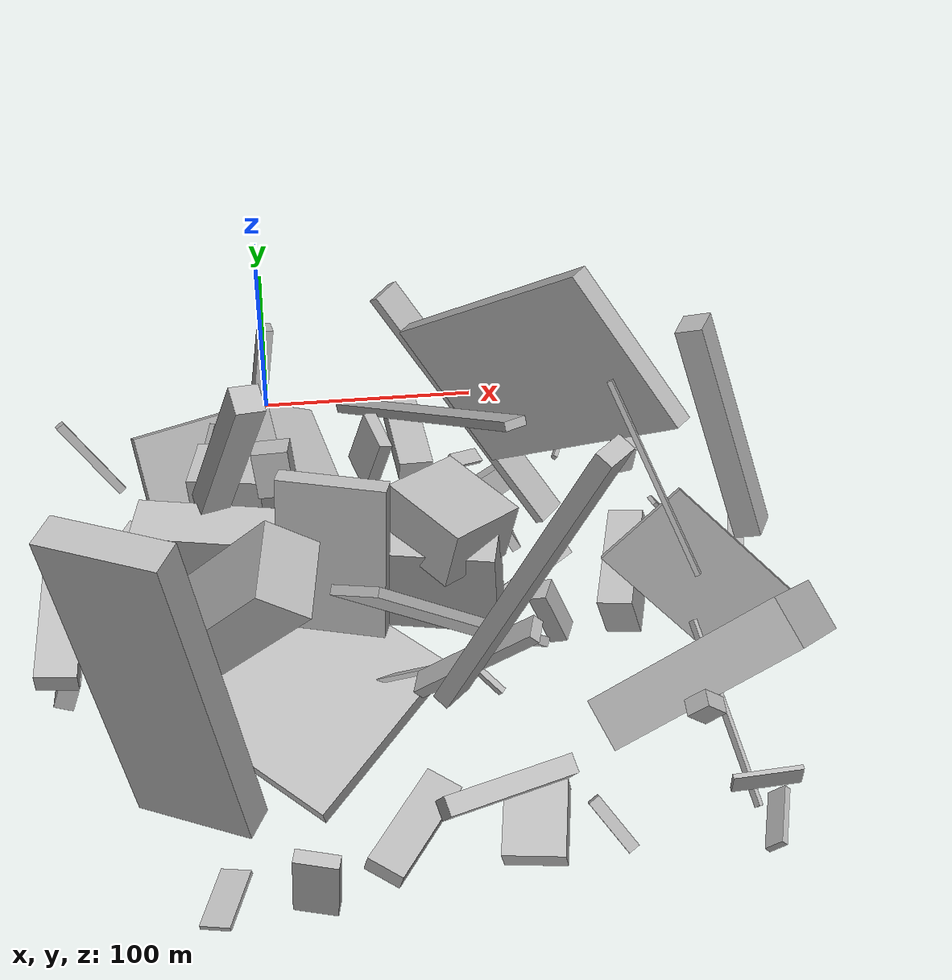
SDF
<sdf version="1.6">
 <world name="default">
  <model name="building_2">
   <static>0</static>
   <pose>20.115930124817158 -164.19813199769504 38.87186801956815 0.05302751474850434 0.05117361558581353 -1.7988946004145192</pose>
   <link name="link">
    <gravity>0</gravity>
    <pose>0 0 22.5 0 0 0</pose>
    <collision name="collision"><geometry><box><size>21 150 45</size></box></geometry></collision>
    <visual name="visual">
     <cast_shadows>0</cast_shadows>
     <geometry><box><size>21 150 45</size></box></geometry>
     <material>
      <script>
       <uri>model://HANNAS_wall/materials/scripts</uri>
       <uri>model://HANNAS_wall/materials/textures</uri>
       <name>vrc/HANNAS_wall</name>
      </script>
     </material>
    </visual>
   </link>
  </model>
  <model name="building_10">
   <static>0</static>
   <pose>-14.653882508272398 -234.8858611273966 21.38120555154649 -0.1643764812842645 -1.313797045708349 -2.1714278078921576</pose>
   <link name="link">
    <gravity>0</gravity>
    <pose>0 0 40.5 0 0 0</pose>
    <collision name="collision"><geometry><box><size>8 79 81</size></box></geometry></collision>
    <visual name="visual">
     <cast_shadows>0</cast_shadows>
     <geometry><box><size>8 79 81</size></box></geometry>
     <material>
      <script>
       <uri>model://HANNAS_wall/materials/scripts</uri>
       <uri>model://HANNAS_wall/materials/textures</uri>
       <name>vrc/HANNAS_wall</name>
      </script>
     </material>
    </visual>
   </link>
  </model>
  <model name="building_17">
   <static>0</static>
   <pose>55.57145236262984 -222.6436472532139 50.40587718873466 -0.7411034410752321 0.10081316057884478 -1.845032765059312</pose>
   <link name="link">
    <gravity>0</gravity>
    <pose>0 0 33.5 0 0 0</pose>
    <collision name="collision"><geometry><box><size>10 5 67</size></box></geometry></collision>
    <visual name="visual">
     <cast_shadows>0</cast_shadows>
     <geometry><box><size>10 5 67</size></box></geometry>
     <material>
      <script>
       <uri>model://HANNAS_wall/materials/scripts</uri>
       <uri>model://HANNAS_wall/materials/textures</uri>
       <name>vrc/HANNAS_wall</name>
      </script>
     </material>
    </visual>
   </link>
  </model>
  <model name="building_25">
   <static>0</static>
   <pose>82.06618334382708 -109.70899137280261 12.911439734087468 -1.81425020537896 0.7407651662791405 1.3296588367044313</pose>
   <link name="link">
    <gravity>0</gravity>
    <pose>0 0 11.0 0 0 0</pose>
    <collision name="collision"><geometry><box><size>8 4 22</size></box></geometry></collision>
    <visual name="visual">
     <cast_shadows>0</cast_shadows>
     <geometry><box><size>8 4 22</size></box></geometry>
     <material>
      <script>
       <uri>model://HANNAS_wall/materials/scripts</uri>
       <uri>model://HANNAS_wall/materials/textures</uri>
       <name>vrc/HANNAS_wall</name>
      </script>
     </material>
    </visual>
   </link>
  </model>
  <model name="building_29">
   <static>0</static>
   <pose>64.6198443517878 -97.30763751534842 78.0623768036405 1.761979795424307 -0.9644688415030647 1.870822670234923</pose>
   <link name="link">
    <gravity>0</gravity>
    <pose>0 0 5.0 0 0 0</pose>
    <collision name="collision"><geometry><box><size>4 150 10</size></box></geometry></collision>
    <visual name="visual">
     <cast_shadows>0</cast_shadows>
     <geometry><box><size>4 150 10</size></box></geometry>
     <material>
      <script>
       <uri>model://HANNAS_wall/materials/scripts</uri>
       <uri>model://HANNAS_wall/materials/textures</uri>
       <name>vrc/HANNAS_wall</name>
      </script>
     </material>
    </visual>
   </link>
  </model>
  <model name="building_33">
   <static>0</static>
   <pose>112.37411288349234 -170.54389705355626 28.919201019426623 -1.1468998049021748 -0.021981084122898717 -1.9338927442164555</pose>
   <link name="link">
    <gravity>0</gravity>
    <pose>0 0 4.0 0 0 0</pose>
    <collision name="collision"><geometry><box><size>11 26 8</size></box></geometry></collision>
    <visual name="visual">
     <cast_shadows>0</cast_shadows>
     <geometry><box><size>11 26 8</size></box></geometry>
     <material>
      <script>
       <uri>model://HANNAS_wall/materials/scripts</uri>
       <uri>model://HANNAS_wall/materials/textures</uri>
       <name>vrc/HANNAS_wall</name>
      </script>
     </material>
    </visual>
   </link>
  </model>
  <model name="building_41">
   <static>0</static>
   <pose>-3.1355635308226386 -62.61574151499572 48.77479102769235 -2.6857091984338752 -1.1535623427216741 1.1895858620108335</pose>
   <link name="link">
    <gravity>0</gravity>
    <pose>0 0 5.5 0 0 0</pose>
    <collision name="collision"><geometry><box><size>86 6 11</size></box></geometry></collision>
    <visual name="visual">
     <cast_shadows>0</cast_shadows>
     <geometry><box><size>86 6 11</size></box></geometry>
     <material>
      <script>
       <uri>model://HANNAS_wall/materials/scripts</uri>
       <uri>model://HANNAS_wall/materials/textures</uri>
       <name>vrc/HANNAS_wall</name>
      </script>
     </material>
    </visual>
   </link>
  </model>
  <model name="building_45">
   <static>0</static>
   <pose>-21.53232263623066 -100.40113677014267 31.678432481188562 0.07042741839347301 0.6018804615805614 1.9922401877541265</pose>
   <link name="link">
    <gravity>0</gravity>
    <pose>0 0 21.0 0 0 0</pose>
    <collision name="collision"><geometry><box><size>5 63 42</size></box></geometry></collision>
    <visual name="visual">
     <cast_shadows>0</cast_shadows>
     <geometry><box><size>5 63 42</size></box></geometry>
     <material>
      <script>
       <uri>model://HANNAS_wall/materials/scripts</uri>
       <uri>model://HANNAS_wall/materials/textures</uri>
       <name>vrc/HANNAS_wall</name>
      </script>
     </material>
    </visual>
   </link>
  </model>
  <model name="building_48">
   <static>0</static>
   <pose>59.304486040489145 -154.61539108928577 89.2467785555956 1.615810645872121 0.22770645034867296 0.690434921098013</pose>
   <link name="link">
    <gravity>0</gravity>
    <pose>0 0 19.5 0 0 0</pose>
    <collision name="collision"><geometry><box><size>36 25 39</size></box></geometry></collision>
    <visual name="visual">
     <cast_shadows>0</cast_shadows>
     <geometry><box><size>36 25 39</size></box></geometry>
     <material>
      <script>
       <uri>model://HANNAS_wall/materials/scripts</uri>
       <uri>model://HANNAS_wall/materials/textures</uri>
       <name>vrc/HANNAS_wall</name>
      </script>
     </material>
    </visual>
   </link>
  </model>
  <model name="building_55">
   <static>0</static>
   <pose>64.57677896662419 -251.51733581655637 80.02654260361066 -0.33266746104643874 -0.14439589258159058 -2.3137843040608077</pose>
   <link name="link">
    <gravity>0</gravity>
    <pose>0 0 75.0 0 0 0</pose>
    <collision name="collision"><geometry><box><size>14 7 150</size></box></geometry></collision>
    <visual name="visual">
     <cast_shadows>0</cast_shadows>
     <geometry><box><size>14 7 150</size></box></geometry>
     <material>
      <script>
       <uri>model://HANNAS_wall/materials/scripts</uri>
       <uri>model://HANNAS_wall/materials/textures</uri>
       <name>vrc/HANNAS_wall</name>
      </script>
     </material>
    </visual>
   </link>
  </model>
  <model name="building_57">
   <static>0</static>
   <pose>-46.806011891671744 -265.58262848588737 106.00445804383712 1.2664248955150095 -1.4229365916346872 2.9499912989440564</pose>
   <link name="link">
    <gravity>0</gravity>
    <pose>0 0 7.0 0 0 0</pose>
    <collision name="collision"><geometry><box><size>150 50 14</size></box></geometry></collision>
    <visual name="visual">
     <cast_shadows>0</cast_shadows>
     <geometry><box><size>150 50 14</size></box></geometry>
     <material>
      <script>
       <uri>model://HANNAS_wall/materials/scripts</uri>
       <uri>model://HANNAS_wall/materials/textures</uri>
       <name>vrc/HANNAS_wall</name>
      </script>
     </material>
    </visual>
   </link>
  </model>
  <model name="building_58">
   <static>0</static>
   <pose>178.44542617045857 -149.1197040440265 23.113885636562685 -2.0559317305436897 -1.0906878141289722 1.2617319933975037</pose>
   <link name="link">
    <gravity>0</gravity>
    <pose>0 0 8.5 0 0 0</pose>
    <collision name="collision"><geometry><box><size>24 23 17</size></box></geometry></collision>
    <visual name="visual">
     <cast_shadows>0</cast_shadows>
     <geometry><box><size>24 23 17</size></box></geometry>
     <material>
      <script>
       <uri>model://HANNAS_wall/materials/scripts</uri>
       <uri>model://HANNAS_wall/materials/textures</uri>
       <name>vrc/HANNAS_wall</name>
      </script>
     </material>
    </visual>
   </link>
  </model>
  <model name="building_60">
   <static>0</static>
   <pose>153.32607551349147 -152.57368756796382 21.730935655693163 0.23762802795029403 -0.20741377636876135 -0.30191598861191105</pose>
   <link name="link">
    <gravity>0</gravity>
    <pose>0 0 12.5 0 0 0</pose>
    <collision name="collision"><geometry><box><size>15 46 25</size></box></geometry></collision>
    <visual name="visual">
     <cast_shadows>0</cast_shadows>
     <geometry><box><size>15 46 25</size></box></geometry>
     <material>
      <script>
       <uri>model://HANNAS_wall/materials/scripts</uri>
       <uri>model://HANNAS_wall/materials/textures</uri>
       <name>vrc/HANNAS_wall</name>
      </script>
     </material>
    </visual>
   </link>
  </model>
  <model name="building_61">
   <static>0</static>
   <pose>98.79811189447233 -86.95916325221143 12.849584905360675 -0.5576245099301077 0.2625470262161076 0.8285946858133452</pose>
   <link name="link">
    <gravity>0</gravity>
    <pose>0 0 6.0 0 0 0</pose>
    <collision name="collision"><geometry><box><size>31 8 12</size></box></geometry></collision>
    <visual name="visual">
     <cast_shadows>0</cast_shadows>
     <geometry><box><size>31 8 12</size></box></geometry>
     <material>
      <script>
       <uri>model://HANNAS_wall/materials/scripts</uri>
       <uri>model://HANNAS_wall/materials/textures</uri>
       <name>vrc/HANNAS_wall</name>
      </script>
     </material>
    </visual>
   </link>
  </model>
  <model name="building_62">
   <static>0</static>
   <pose>192.5981578631846 -122.53788837827994 78.79977411280898 1.9720759930179923 -1.1359447752721663 2.319978445361871</pose>
   <link name="link">
    <gravity>0</gravity>
    <pose>0 0 7.5 0 0 0</pose>
    <collision name="collision"><geometry><box><size>103 12 15</size></box></geometry></collision>
    <visual name="visual">
     <cast_shadows>0</cast_shadows>
     <geometry><box><size>103 12 15</size></box></geometry>
     <material>
      <script>
       <uri>model://HANNAS_wall/materials/scripts</uri>
       <uri>model://HANNAS_wall/materials/textures</uri>
       <name>vrc/HANNAS_wall</name>
      </script>
     </material>
    </visual>
   </link>
  </model>
  <model name="building_65">
   <static>0</static>
   <pose>23.14238262968079 -191.9132581876779 93.29061042088983 1.7933318608636255 0.021293080809753465 2.8750200434883135</pose>
   <link name="link">
    <gravity>0</gravity>
    <pose>0 0 4.0 0 0 0</pose>
    <collision name="collision"><geometry><box><size>44 69 8</size></box></geometry></collision>
    <visual name="visual">
     <cast_shadows>0</cast_shadows>
     <geometry><box><size>44 69 8</size></box></geometry>
     <material>
      <script>
       <uri>model://HANNAS_wall/materials/scripts</uri>
       <uri>model://HANNAS_wall/materials/textures</uri>
       <name>vrc/HANNAS_wall</name>
      </script>
     </material>
    </visual>
   </link>
  </model>
  <model name="building_69">
   <static>0</static>
   <pose>-78.29454830998168 -64.67390494172753 36.4126117204011 -2.366166138102559 -0.9213501448685952 2.7867799126848265</pose>
   <link name="link">
    <gravity>0</gravity>
    <pose>0 0 2.0 0 0 0</pose>
    <collision name="collision"><geometry><box><size>43 4 4</size></box></geometry></collision>
    <visual name="visual">
     <cast_shadows>0</cast_shadows>
     <geometry><box><size>43 4 4</size></box></geometry>
     <material>
      <script>
       <uri>model://HANNAS_wall/materials/scripts</uri>
       <uri>model://HANNAS_wall/materials/textures</uri>
       <name>vrc/HANNAS_wall</name>
      </script>
     </material>
    </visual>
   </link>
  </model>
  <model name="building_72">
   <static>0</static>
   <pose>165.22284345289594 -225.7608390407624 69.40571266620425 2.275553194958932 -0.6766431850079959 0.004392168757803428</pose>
   <link name="link">
    <gravity>0</gravity>
    <pose>0 0 11.0 0 0 0</pose>
    <collision name="collision"><geometry><box><size>86 54 22</size></box></geometry></collision>
    <visual name="visual">
     <cast_shadows>0</cast_shadows>
     <geometry><box><size>86 54 22</size></box></geometry>
     <material>
      <script>
       <uri>model://HANNAS_wall/materials/scripts</uri>
       <uri>model://HANNAS_wall/materials/textures</uri>
       <name>vrc/HANNAS_wall</name>
      </script>
     </material>
    </visual>
   </link>
  </model>
  <model name="building_83">
   <static>0</static>
   <pose>-20.177244760757407 -155.64967885698138 118.74687004132306 -2.024254490968071 -1.201841854659815 -0.869928716143715</pose>
   <link name="link">
    <gravity>0</gravity>
    <pose>0 0 6.0 0 0 0</pose>
    <collision name="collision"><geometry><box><size>85 12 12</size></box></geometry></collision>
    <visual name="visual">
     <cast_shadows>0</cast_shadows>
     <geometry><box><size>85 12 12</size></box></geometry>
     <material>
      <script>
       <uri>model://HANNAS_wall/materials/scripts</uri>
       <uri>model://HANNAS_wall/materials/textures</uri>
       <name>vrc/HANNAS_wall</name>
      </script>
     </material>
    </visual>
   </link>
  </model>
  <model name="building_86">
   <static>0</static>
   <pose>89.65680408116185 -65.9262042433949 53.80362345214422 0.8087181341406603 -0.13660286046806155 0.7695952012316586</pose>
   <link name="link">
    <gravity>0</gravity>
    <pose>0 0 3.0 0 0 0</pose>
    <collision name="collision"><geometry><box><size>13 128 6</size></box></geometry></collision>
    <visual name="visual">
     <cast_shadows>0</cast_shadows>
     <geometry><box><size>13 128 6</size></box></geometry>
     <material>
      <script>
       <uri>model://HANNAS_wall/materials/scripts</uri>
       <uri>model://HANNAS_wall/materials/textures</uri>
       <name>vrc/HANNAS_wall</name>
      </script>
     </material>
    </visual>
   </link>
  </model>
  <model name="building_87">
   <static>0</static>
   <pose>-62.68106762970011 -100.67473033619099 17.92817573729197 1.4371061543623482 -1.2621133316720623 -0.3425859860334725</pose>
   <link name="link">
    <gravity>0</gravity>
    <pose>0 0 21.5 0 0 0</pose>
    <collision name="collision"><geometry><box><size>21 7 43</size></box></geometry></collision>
    <visual name="visual">
     <cast_shadows>0</cast_shadows>
     <geometry><box><size>21 7 43</size></box></geometry>
     <material>
      <script>
       <uri>model://HANNAS_wall/materials/scripts</uri>
       <uri>model://HANNAS_wall/materials/textures</uri>
       <name>vrc/HANNAS_wall</name>
      </script>
     </material>
    </visual>
   </link>
  </model>
  <model name="building_90">
   <static>0</static>
   <pose>130.79523859044875 -137.8534179496747 96.97353263816859 0.7668216752493722 0.16503710604066718 -2.433634890597239</pose>
   <link name="link">
    <gravity>0</gravity>
    <pose>0 0 35.5 0 0 0</pose>
    <collision name="collision"><geometry><box><size>7 150 71</size></box></geometry></collision>
    <visual name="visual">
     <cast_shadows>0</cast_shadows>
     <geometry><box><size>7 150 71</size></box></geometry>
     <material>
      <script>
       <uri>model://HANNAS_wall/materials/scripts</uri>
       <uri>model://HANNAS_wall/materials/textures</uri>
       <name>vrc/HANNAS_wall</name>
      </script>
     </material>
    </visual>
   </link>
  </model>
  <model name="building_94">
   <static>0</static>
   <pose>41.11424382492352 -116.74228011941064 16.150655836621407 1.2439511117817144 -1.1207428656020961 0.7728546599898881</pose>
   <link name="link">
    <gravity>0</gravity>
    <pose>0 0 4.0 0 0 0</pose>
    <collision name="collision"><geometry><box><size>10 15 8</size></box></geometry></collision>
    <visual name="visual">
     <cast_shadows>0</cast_shadows>
     <geometry><box><size>10 15 8</size></box></geometry>
     <material>
      <script>
       <uri>model://HANNAS_wall/materials/scripts</uri>
       <uri>model://HANNAS_wall/materials/textures</uri>
       <name>vrc/HANNAS_wall</name>
      </script>
     </material>
    </visual>
   </link>
  </model>
  <model name="building_95">
   <static>0</static>
   <pose>100.23281832144102 -201.26283711128804 47.548110122701324 0.6940412846850201 -0.49646343166279033 -0.668192720636193</pose>
   <link name="link">
    <gravity>0</gravity>
    <pose>0 0 51.0 0 0 0</pose>
    <collision name="collision"><geometry><box><size>25 4 102</size></box></geometry></collision>
    <visual name="visual">
     <cast_shadows>0</cast_shadows>
     <geometry><box><size>25 4 102</size></box></geometry>
     <material>
      <script>
       <uri>model://HANNAS_wall/materials/scripts</uri>
       <uri>model://HANNAS_wall/materials/textures</uri>
       <name>vrc/HANNAS_wall</name>
      </script>
     </material>
    </visual>
   </link>
  </model>
  <model name="building_100">
   <static>0</static>
   <pose>100.71717931586086 -120.36412615372488 33.591980723084816 1.0088941492089871 -0.44641903206759553 0.2894194484331794</pose>
   <link name="link">
    <gravity>0</gravity>
    <pose>0 0 12.0 0 0 0</pose>
    <collision name="collision"><geometry><box><size>4 13 24</size></box></geometry></collision>
    <visual name="visual">
     <cast_shadows>0</cast_shadows>
     <geometry><box><size>4 13 24</size></box></geometry>
     <material>
      <script>
       <uri>model://HANNAS_wall/materials/scripts</uri>
       <uri>model://HANNAS_wall/materials/textures</uri>
       <name>vrc/HANNAS_wall</name>
      </script>
     </material>
    </visual>
   </link>
  </model>
  <model name="building_109">
   <static>0</static>
   <pose>157.93919721803712 -112.33136707663239 64.33720233184894 1.8060112545824079 0.6464731753858238 -1.408871413568316</pose>
   <link name="link">
    <gravity>0</gravity>
    <pose>0 0 4.5 0 0 0</pose>
    <collision name="collision"><geometry><box><size>9 77 9</size></box></geometry></collision>
    <visual name="visual">
     <cast_shadows>0</cast_shadows>
     <geometry><box><size>9 77 9</size></box></geometry>
     <material>
      <script>
       <uri>model://HANNAS_wall/materials/scripts</uri>
       <uri>model://HANNAS_wall/materials/textures</uri>
       <name>vrc/HANNAS_wall</name>
      </script>
     </material>
    </visual>
   </link>
  </model>
  <model name="building_115">
   <static>0</static>
   <pose>-81.13247199550916 -246.90754813016662 96.41196381839696 -0.22940714861636383 -1.4283756794142208 -1.3978720352013458</pose>
   <link name="link">
    <gravity>0</gravity>
    <pose>0 0 30.5 0 0 0</pose>
    <collision name="collision"><geometry><box><size>9 16 61</size></box></geometry></collision>
    <visual name="visual">
     <cast_shadows>0</cast_shadows>
     <geometry><box><size>9 16 61</size></box></geometry>
     <material>
      <script>
       <uri>model://HANNAS_wall/materials/scripts</uri>
       <uri>model://HANNAS_wall/materials/textures</uri>
       <name>vrc/HANNAS_wall</name>
      </script>
     </material>
    </visual>
   </link>
  </model>
  <model name="building_118">
   <static>0</static>
   <pose>197.5589991409333 -259.1487330754447 11.061764370691503 1.5988281615284305 0.7320529500939165 -0.23730004032871474</pose>
   <link name="link">
    <gravity>0</gravity>
    <pose>0 0 13.5 0 0 0</pose>
    <collision name="collision"><geometry><box><size>3 9 27</size></box></geometry></collision>
    <visual name="visual">
     <cast_shadows>0</cast_shadows>
     <geometry><box><size>3 9 27</size></box></geometry>
     <material>
      <script>
       <uri>model://HANNAS_wall/materials/scripts</uri>
       <uri>model://HANNAS_wall/materials/textures</uri>
       <name>vrc/HANNAS_wall</name>
      </script>
     </material>
    </visual>
   </link>
  </model>
  <model name="building_126">
   <static>0</static>
   <pose>1.288243516894891 -128.72979635833707 42.53296514786243 -2.318363097789258 -1.4582097796813684 2.104246017134072</pose>
   <link name="link">
    <gravity>0</gravity>
    <pose>0 0 15.5 0 0 0</pose>
    <collision name="collision"><geometry><box><size>80 25 31</size></box></geometry></collision>
    <visual name="visual">
     <cast_shadows>0</cast_shadows>
     <geometry><box><size>80 25 31</size></box></geometry>
     <material>
      <script>
       <uri>model://HANNAS_wall/materials/scripts</uri>
       <uri>model://HANNAS_wall/materials/textures</uri>
       <name>vrc/HANNAS_wall</name>
      </script>
     </material>
    </visual>
   </link>
  </model>
  <model name="building_127">
   <static>0</static>
   <pose>81.85211866598398 -278.4196344837753 53.272169282231985 -0.12898523043396276 0.5136966399409719 -1.2590906597268083</pose>
   <link name="link">
    <gravity>0</gravity>
    <pose>0 0 5.0 0 0 0</pose>
    <collision name="collision"><geometry><box><size>8 55 10</size></box></geometry></collision>
    <visual name="visual">
     <cast_shadows>0</cast_shadows>
     <geometry><box><size>8 55 10</size></box></geometry>
     <material>
      <script>
       <uri>model://HANNAS_wall/materials/scripts</uri>
       <uri>model://HANNAS_wall/materials/textures</uri>
       <name>vrc/HANNAS_wall</name>
      </script>
     </material>
    </visual>
   </link>
  </model>
  <model name="building_131">
   <static>0</static>
   <pose>181.2816889673761 -285.09569511227096 52.47758694585343 -0.04449893236541682 -0.10971800223028848 1.6151601832095275</pose>
   <link name="link">
    <gravity>0</gravity>
    <pose>0 0 5.0 0 0 0</pose>
    <collision name="collision"><geometry><box><size>2 27 10</size></box></geometry></collision>
    <visual name="visual">
     <cast_shadows>0</cast_shadows>
     <geometry><box><size>2 27 10</size></box></geometry>
     <material>
      <script>
       <uri>model://HANNAS_wall/materials/scripts</uri>
       <uri>model://HANNAS_wall/materials/textures</uri>
       <name>vrc/HANNAS_wall</name>
      </script>
     </material>
    </visual>
   </link>
  </model>
  <model name="building_133">
   <static>0</static>
   <pose>131.74264195122788 -84.93389717562323 57.2818017439639 -3.0489397964035745 0.918859482099873 2.8860302376464366</pose>
   <link name="link">
    <gravity>0</gravity>
    <pose>0 0 1.0 0 0 0</pose>
    <collision name="collision"><geometry><box><size>2 47 2</size></box></geometry></collision>
    <visual name="visual">
     <cast_shadows>0</cast_shadows>
     <geometry><box><size>2 47 2</size></box></geometry>
     <material>
      <script>
       <uri>model://HANNAS_wall/materials/scripts</uri>
       <uri>model://HANNAS_wall/materials/textures</uri>
       <name>vrc/HANNAS_wall</name>
      </script>
     </material>
    </visual>
   </link>
  </model>
  <model name="building_135">
   <static>0</static>
   <pose>-46.08735279704539 -125.27800669746117 6.828600832795215 1.5272385469569247 -0.11624599409238742 -0.2089633353019926</pose>
   <link name="link">
    <gravity>0</gravity>
    <pose>0 0 5.0 0 0 0</pose>
    <collision name="collision"><geometry><box><size>54 5 10</size></box></geometry></collision>
    <visual name="visual">
     <cast_shadows>0</cast_shadows>
     <geometry><box><size>54 5 10</size></box></geometry>
     <material>
      <script>
       <uri>model://HANNAS_wall/materials/scripts</uri>
       <uri>model://HANNAS_wall/materials/textures</uri>
       <name>vrc/HANNAS_wall</name>
      </script>
     </material>
    </visual>
   </link>
  </model>
  <model name="building_143">
   <static>0</static>
   <pose>171.15298145572044 -105.41935662045121 24.902596455448975 2.5157034705105206 0.13612151017257815 1.8560912126010578</pose>
   <link name="link">
    <gravity>0</gravity>
    <pose>0 0 24.0 0 0 0</pose>
    <collision name="collision"><geometry><box><size>6 2 48</size></box></geometry></collision>
    <visual name="visual">
     <cast_shadows>0</cast_shadows>
     <geometry><box><size>6 2 48</size></box></geometry>
     <material>
      <script>
       <uri>model://HANNAS_wall/materials/scripts</uri>
       <uri>model://HANNAS_wall/materials/textures</uri>
       <name>vrc/HANNAS_wall</name>
      </script>
     </material>
    </visual>
   </link>
  </model>
  <model name="building_146">
   <static>0</static>
   <pose>10.118927373350424 -289.48264143981294 21.633653438912596 2.5749233886666536 -1.4778393158905914 -1.236014513335131</pose>
   <link name="link">
    <gravity>0</gravity>
    <pose>0 0 3.0 0 0 0</pose>
    <collision name="collision"><geometry><box><size>37 18 6</size></box></geometry></collision>
    <visual name="visual">
     <cast_shadows>0</cast_shadows>
     <geometry><box><size>37 18 6</size></box></geometry>
     <material>
      <script>
       <uri>model://HANNAS_wall/materials/scripts</uri>
       <uri>model://HANNAS_wall/materials/textures</uri>
       <name>vrc/HANNAS_wall</name>
      </script>
     </material>
    </visual>
   </link>
  </model>
  <model name="building_149">
   <static>0</static>
   <pose>-38.44994192928009 -202.13339361044746 10.041398876266722 1.3198582834373267 -0.1820110597094737 1.1772378602085238</pose>
   <link name="link">
    <gravity>0</gravity>
    <pose>0 0 2.5 0 0 0</pose>
    <collision name="collision"><geometry><box><size>40 8 5</size></box></geometry></collision>
    <visual name="visual">
     <cast_shadows>0</cast_shadows>
     <geometry><box><size>40 8 5</size></box></geometry>
     <material>
      <script>
       <uri>model://HANNAS_wall/materials/scripts</uri>
       <uri>model://HANNAS_wall/materials/textures</uri>
       <name>vrc/HANNAS_wall</name>
      </script>
     </material>
    </visual>
   </link>
  </model>
  <model name="building_167">
   <static>0</static>
   <pose>-26.693007969098687 -106.93553560462172 47.711401529852274 0.7826381630341074 0.31084573828817247 2.414981620330419</pose>
   <link name="link">
    <gravity>0</gravity>
    <pose>0 0 15.5 0 0 0</pose>
    <collision name="collision"><geometry><box><size>3 17 31</size></box></geometry></collision>
    <visual name="visual">
     <cast_shadows>0</cast_shadows>
     <geometry><box><size>3 17 31</size></box></geometry>
     <material>
      <script>
       <uri>model://HANNAS_wall/materials/scripts</uri>
       <uri>model://HANNAS_wall/materials/textures</uri>
       <name>vrc/HANNAS_wall</name>
      </script>
     </material>
    </visual>
   </link>
  </model>
  <model name="building_170">
   <static>0</static>
   <pose>63.41604790339656 -72.16765656056403 47.54498114682969 -3.047225041680436 -0.04965049291167285 -3.0689932728132523</pose>
   <link name="link">
    <gravity>0</gravity>
    <pose>0 0 4.5 0 0 0</pose>
    <collision name="collision"><geometry><box><size>15 50 9</size></box></geometry></collision>
    <visual name="visual">
     <cast_shadows>0</cast_shadows>
     <geometry><box><size>15 50 9</size></box></geometry>
     <material>
      <script>
       <uri>model://HANNAS_wall/materials/scripts</uri>
       <uri>model://HANNAS_wall/materials/textures</uri>
       <name>vrc/HANNAS_wall</name>
      </script>
     </material>
    </visual>
   </link>
  </model>
  <model name="building_177">
   <static>0</static>
   <pose>17.837916408472914 -68.48486658649634 28.75251291094543 -3.074055448355195 -0.4272921102972726 -2.964466714347185</pose>
   <link name="link">
    <gravity>0</gravity>
    <pose>0 0 3.5 0 0 0</pose>
    <collision name="collision"><geometry><box><size>26 80 7</size></box></geometry></collision>
    <visual name="visual">
     <cast_shadows>0</cast_shadows>
     <geometry><box><size>26 80 7</size></box></geometry>
     <material>
      <script>
       <uri>model://HANNAS_wall/materials/scripts</uri>
       <uri>model://HANNAS_wall/materials/textures</uri>
       <name>vrc/HANNAS_wall</name>
      </script>
     </material>
    </visual>
   </link>
  </model>
  <model name="building_185">
   <static>0</static>
   <pose>189.34165698250135 -107.52662859751283 14.886654172947795 1.8884110835641332 -0.02966781704065549 0.09425152721885141</pose>
   <link name="link">
    <gravity>0</gravity>
    <pose>0 0 3.5 0 0 0</pose>
    <collision name="collision"><geometry><box><size>2 2 7</size></box></geometry></collision>
    <visual name="visual">
     <cast_shadows>0</cast_shadows>
     <geometry><box><size>2 2 7</size></box></geometry>
     <material>
      <script>
       <uri>model://HANNAS_wall/materials/scripts</uri>
       <uri>model://HANNAS_wall/materials/textures</uri>
       <name>vrc/HANNAS_wall</name>
      </script>
     </material>
    </visual>
   </link>
  </model>
  <model name="building_189">
   <static>0</static>
   <pose>109.43112109848855 -135.15395658229218 16.360259038192254 2.187290562368628 0.11415303980926605 0.7360291530261445</pose>
   <link name="link">
    <gravity>0</gravity>
    <pose>0 0 3.0 0 0 0</pose>
    <collision name="collision"><geometry><box><size>55 3 6</size></box></geometry></collision>
    <visual name="visual">
     <cast_shadows>0</cast_shadows>
     <geometry><box><size>55 3 6</size></box></geometry>
     <material>
      <script>
       <uri>model://HANNAS_wall/materials/scripts</uri>
       <uri>model://HANNAS_wall/materials/textures</uri>
       <name>vrc/HANNAS_wall</name>
      </script>
     </material>
    </visual>
   </link>
  </model>
  <model name="building_192">
   <static>0</static>
   <pose>-32.26908393545893 -284.3211512582923 4.231362537209368 -1.3425998739982516 -0.052573298224912 -1.8976037770064726</pose>
   <link name="link">
    <gravity>0</gravity>
    <pose>0 0 6.5 0 0 0</pose>
    <collision name="collision"><geometry><box><size>28 2 13</size></box></geometry></collision>
    <visual name="visual">
     <cast_shadows>0</cast_shadows>
     <geometry><box><size>28 2 13</size></box></geometry>
     <material>
      <script>
       <uri>model://HANNAS_wall/materials/scripts</uri>
       <uri>model://HANNAS_wall/materials/textures</uri>
       <name>vrc/HANNAS_wall</name>
      </script>
     </material>
    </visual>
   </link>
  </model>
  <model name="building_193">
   <static>0</static>
   <pose>89.79057593504986 -78.04163783518122 32.72611122403012 2.763324902601454 0.3440074850355977 -1.108359148970348</pose>
   <link name="link">
    <gravity>0</gravity>
    <pose>0 0 1.0 0 0 0</pose>
    <collision name="collision"><geometry><box><size>7 16 2</size></box></geometry></collision>
    <visual name="visual">
     <cast_shadows>0</cast_shadows>
     <geometry><box><size>7 16 2</size></box></geometry>
     <material>
      <script>
       <uri>model://HANNAS_wall/materials/scripts</uri>
       <uri>model://HANNAS_wall/materials/textures</uri>
       <name>vrc/HANNAS_wall</name>
      </script>
     </material>
    </visual>
   </link>
  </model>
  <model name="building_194">
   <static>0</static>
   <pose>96.99873828247907 -274.02629991240565 20.670085124205755 -0.11926244383682406 -0.32608543866477935 1.4155242167093747</pose>
   <link name="link">
    <gravity>0</gravity>
    <pose>0 0 6.5 0 0 0</pose>
    <collision name="collision"><geometry><box><size>31 25 13</size></box></geometry></collision>
    <visual name="visual">
     <cast_shadows>0</cast_shadows>
     <geometry><box><size>31 25 13</size></box></geometry>
     <material>
      <script>
       <uri>model://HANNAS_wall/materials/scripts</uri>
       <uri>model://HANNAS_wall/materials/textures</uri>
       <name>vrc/HANNAS_wall</name>
      </script>
     </material>
    </visual>
   </link>
  </model>
  <model name="building_195">
   <static>0</static>
   <pose>24.84594424916488 -203.94575686029233 30.42939132575425 2.6122211370247617 -0.4751479943951109 -0.250017434460628</pose>
   <link name="link">
    <gravity>0</gravity>
    <pose>0 0 1.0 0 0 0</pose>
    <collision name="collision"><geometry><box><size>80 4 2</size></box></geometry></collision>
    <visual name="visual">
     <cast_shadows>0</cast_shadows>
     <geometry><box><size>80 4 2</size></box></geometry>
     <material>
      <script>
       <uri>model://HANNAS_wall/materials/scripts</uri>
       <uri>model://HANNAS_wall/materials/textures</uri>
       <name>vrc/HANNAS_wall</name>
      </script>
     </material>
    </visual>
   </link>
  </model>
  <model name="building_196">
   <static>0</static>
   <pose>201.9620700644956 -146.2679951837957 20.48527630919894 -1.5298339309413593 1.3645215425386021 -0.152774577202606</pose>
   <link name="link">
    <gravity>0</gravity>
    <pose>0 0 21.5 0 0 0</pose>
    <collision name="collision"><geometry><box><size>2 7 43</size></box></geometry></collision>
    <visual name="visual">
     <cast_shadows>0</cast_shadows>
     <geometry><box><size>2 7 43</size></box></geometry>
     <material>
      <script>
       <uri>model://HANNAS_wall/materials/scripts</uri>
       <uri>model://HANNAS_wall/materials/textures</uri>
       <name>vrc/HANNAS_wall</name>
      </script>
     </material>
    </visual>
   </link>
  </model>
  <model name="building_199">
   <static>0</static>
   <pose>143.4876415105013 -214.97857422525303 150.8336728390799 -2.46820206513018 -0.8394943857902789 2.169430982340518</pose>
   <link name="link">
    <gravity>0</gravity>
    <pose>0 0 1.0 0 0 0</pose>
    <collision name="collision"><geometry><box><size>80 2 2</size></box></geometry></collision>
    <visual name="visual">
     <cast_shadows>0</cast_shadows>
     <geometry><box><size>80 2 2</size></box></geometry>
     <material>
      <script>
       <uri>model://HANNAS_wall/materials/scripts</uri>
       <uri>model://HANNAS_wall/materials/textures</uri>
       <name>vrc/HANNAS_wall</name>
      </script>
     </material>
    </visual>
   </link>
  </model>
  <model name="building_202">
   <static>0</static>
   <pose>179.80328469335024 -232.1087970103095 30.789310613820575 2.6453095338855337 -0.38777253892692215 -2.69765375585531</pose>
   <link name="link">
    <gravity>0</gravity>
    <pose>0 0 1.5 0 0 0</pose>
    <collision name="collision"><geometry><box><size>2 80 3</size></box></geometry></collision>
    <visual name="visual">
     <cast_shadows>0</cast_shadows>
     <geometry><box><size>2 80 3</size></box></geometry>
     <material>
      <script>
       <uri>model://HANNAS_wall/materials/scripts</uri>
       <uri>model://HANNAS_wall/materials/textures</uri>
       <name>vrc/HANNAS_wall</name>
      </script>
     </material>
    </visual>
   </link>
  </model>
  <model name="building_204">
   <static>0</static>
   <pose>-37.58808435010637 -207.7014059623083 69.54200908965691 -0.634055797570012 0.24237359247329424 -1.7342192635145588</pose>
   <link name="link">
    <gravity>0</gravity>
    <pose>0 0 40.0 0 0 0</pose>
    <collision name="collision"><geometry><box><size>32 24 80</size></box></geometry></collision>
    <visual name="visual">
     <cast_shadows>0</cast_shadows>
     <geometry><box><size>32 24 80</size></box></geometry>
     <material>
      <script>
       <uri>model://HANNAS_wall/materials/scripts</uri>
       <uri>model://HANNAS_wall/materials/textures</uri>
       <name>vrc/HANNAS_wall</name>
      </script>
     </material>
    </visual>
   </link>
  </model>
  <model name="building_205">
   <static>0</static>
   <pose>179.23790518450176 -176.25298712413579 47.58339496470105 2.000117446628017 -0.7491275317651198 2.8070070505137092</pose>
   <link name="link">
    <gravity>0</gravity>
    <pose>0 0 1.0 0 0 0</pose>
    <collision name="collision"><geometry><box><size>80 44 2</size></box></geometry></collision>
    <visual name="visual">
     <cast_shadows>0</cast_shadows>
     <geometry><box><size>80 44 2</size></box></geometry>
     <material>
      <script>
       <uri>model://HANNAS_wall/materials/scripts</uri>
       <uri>model://HANNAS_wall/materials/textures</uri>
       <name>vrc/HANNAS_wall</name>
      </script>
     </material>
    </visual>
   </link>
  </model>
  <model name="building_207">
   <static>0</static>
   <pose>161.48833011231517 -269.7908295888377 80.88093176272038 -0.799907221311945 -0.18367989623929623 1.5958353233855118</pose>
   <link name="link">
    <gravity>0</gravity>
    <pose>0 0 5.5 0 0 0</pose>
    <collision name="collision"><geometry><box><size>7 10 11</size></box></geometry></collision>
    <visual name="visual">
     <cast_shadows>0</cast_shadows>
     <geometry><box><size>7 10 11</size></box></geometry>
     <material>
      <script>
       <uri>model://HANNAS_wall/materials/scripts</uri>
       <uri>model://HANNAS_wall/materials/textures</uri>
       <name>vrc/HANNAS_wall</name>
      </script>
     </material>
    </visual>
   </link>
  </model>
  <model name="building_214">
   <static>0</static>
   <pose>123.2836443682678 -281.8158010521825 27.442089741910962 -1.0510767713090494 0.6091866329087067 -0.7857921183789357</pose>
   <link name="link">
    <gravity>0</gravity>
    <pose>0 0 2.5 0 0 0</pose>
    <collision name="collision"><geometry><box><size>25 4 5</size></box></geometry></collision>
    <visual name="visual">
     <cast_shadows>0</cast_shadows>
     <geometry><box><size>25 4 5</size></box></geometry>
     <material>
      <script>
       <uri>model://HANNAS_wall/materials/scripts</uri>
       <uri>model://HANNAS_wall/materials/textures</uri>
       <name>vrc/HANNAS_wall</name>
      </script>
     </material>
    </visual>
   </link>
  </model>
  <model name="building_215">
   <static>0</static>
   <pose>55.72293565152175 -268.6967252581064 11.723077866377803 0.6195916194397832 1.3375977911190853 -3.0792815704988437</pose>
   <link name="link">
    <gravity>0</gravity>
    <pose>0 0 8.0 0 0 0</pose>
    <collision name="collision"><geometry><box><size>7 54 16</size></box></geometry></collision>
    <visual name="visual">
     <cast_shadows>0</cast_shadows>
     <geometry><box><size>7 54 16</size></box></geometry>
     <material>
      <script>
       <uri>model://HANNAS_wall/materials/scripts</uri>
       <uri>model://HANNAS_wall/materials/textures</uri>
       <name>vrc/HANNAS_wall</name>
      </script>
     </material>
    </visual>
   </link>
  </model>
  <model name="building_219">
   <static>0</static>
   <pose>84.34136867410692 -181.6799654326738 6.529204861035836 2.1503653685048314 -0.06795199492823316 0.9256820878246728</pose>
   <link name="link">
    <gravity>0</gravity>
    <pose>0 0 7.0 0 0 0</pose>
    <collision name="collision"><geometry><box><size>3 3 14</size></box></geometry></collision>
    <visual name="visual">
     <cast_shadows>0</cast_shadows>
     <geometry><box><size>3 3 14</size></box></geometry>
     <material>
      <script>
       <uri>model://HANNAS_wall/materials/scripts</uri>
       <uri>model://HANNAS_wall/materials/textures</uri>
       <name>vrc/HANNAS_wall</name>
      </script>
     </material>
    </visual>
   </link>
  </model>
  <model name="building_228">
   <static>0</static>
   <pose>42.39040522526947 -83.27252549922997 55.82827068854026 -1.6247922368446384 -0.28290873708359016 -2.853606069338657</pose>
   <link name="link">
    <gravity>0</gravity>
    <pose>0 0 10.5 0 0 0</pose>
    <collision name="collision"><geometry><box><size>6 26 21</size></box></geometry></collision>
    <visual name="visual">
     <cast_shadows>0</cast_shadows>
     <geometry><box><size>6 26 21</size></box></geometry>
     <material>
      <script>
       <uri>model://HANNAS_wall/materials/scripts</uri>
       <uri>model://HANNAS_wall/materials/textures</uri>
       <name>vrc/HANNAS_wall</name>
      </script>
     </material>
    </visual>
   </link>
  </model>
  <model name="building_229">
   <static>0</static>
   <pose>4.324234998961682 -146.70831932318598 88.85545781468723 -0.13734701941591662 0.28237975383236275 1.4428612416344728</pose>
   <link name="link">
    <gravity>0</gravity>
    <pose>0 0 10.0 0 0 0</pose>
    <collision name="collision"><geometry><box><size>12 15 20</size></box></geometry></collision>
    <visual name="visual">
     <cast_shadows>0</cast_shadows>
     <geometry><box><size>12 15 20</size></box></geometry>
     <material>
      <script>
       <uri>model://HANNAS_wall/materials/scripts</uri>
       <uri>model://HANNAS_wall/materials/textures</uri>
       <name>vrc/HANNAS_wall</name>
      </script>
     </material>
    </visual>
   </link>
  </model>
  <model name="building_231">
   <static>0</static>
   <pose>-62.00076837470533 -130.83191996065523 27.766053102787914 2.0662392533410796 -0.4876556124124659 0.44986105692006706</pose>
   <link name="link">
    <gravity>0</gravity>
    <pose>0 0 2.0 0 0 0</pose>
    <collision name="collision"><geometry><box><size>23 16 4</size></box></geometry></collision>
    <visual name="visual">
     <cast_shadows>0</cast_shadows>
     <geometry><box><size>23 16 4</size></box></geometry>
     <material>
      <script>
       <uri>model://HANNAS_wall/materials/scripts</uri>
       <uri>model://HANNAS_wall/materials/textures</uri>
       <name>vrc/HANNAS_wall</name>
      </script>
     </material>
    </visual>
   </link>
  </model>
  <model name="building_233">
   <static>0</static>
   <pose>-79.61670195919699 -213.43748406474404 51.86895454950272 -0.6317562642825862 -1.172530695562019 0.5826954541948784</pose>
   <link name="link">
    <gravity>0</gravity>
    <pose>0 0 4.0 0 0 0</pose>
    <collision name="collision"><geometry><box><size>13 12 8</size></box></geometry></collision>
    <visual name="visual">
     <cast_shadows>0</cast_shadows>
     <geometry><box><size>13 12 8</size></box></geometry>
     <material>
      <script>
       <uri>model://HANNAS_wall/materials/scripts</uri>
       <uri>model://HANNAS_wall/materials/textures</uri>
       <name>vrc/HANNAS_wall</name>
      </script>
     </material>
    </visual>
   </link>
  </model>
 </world>
</sdf>
